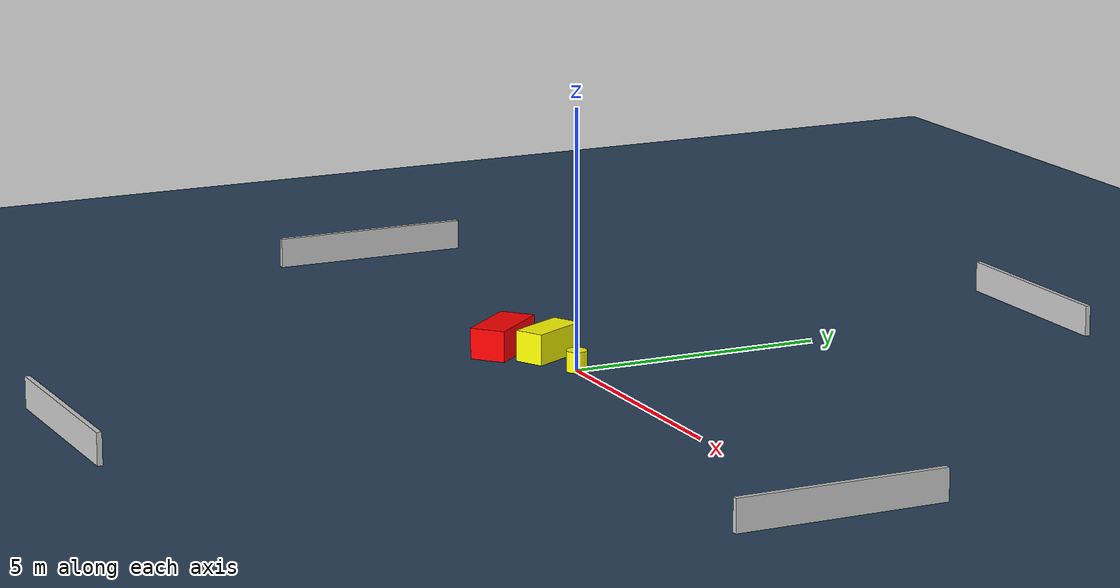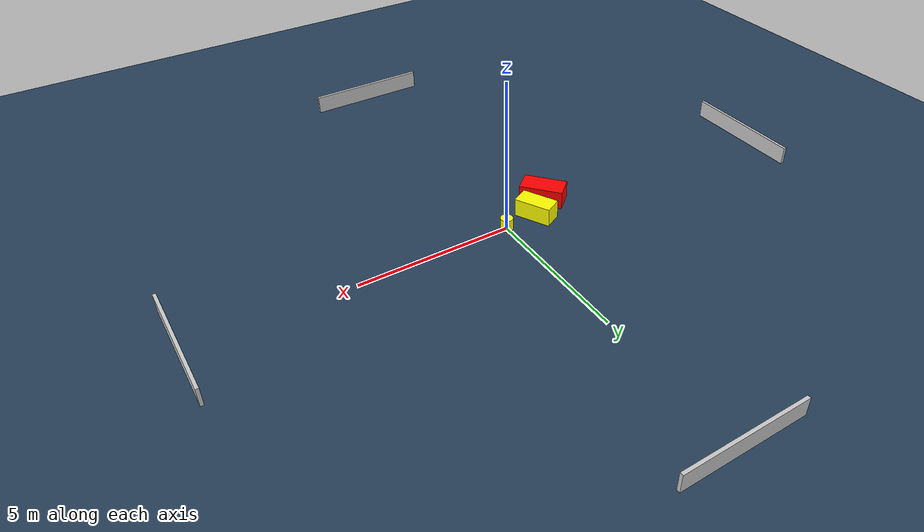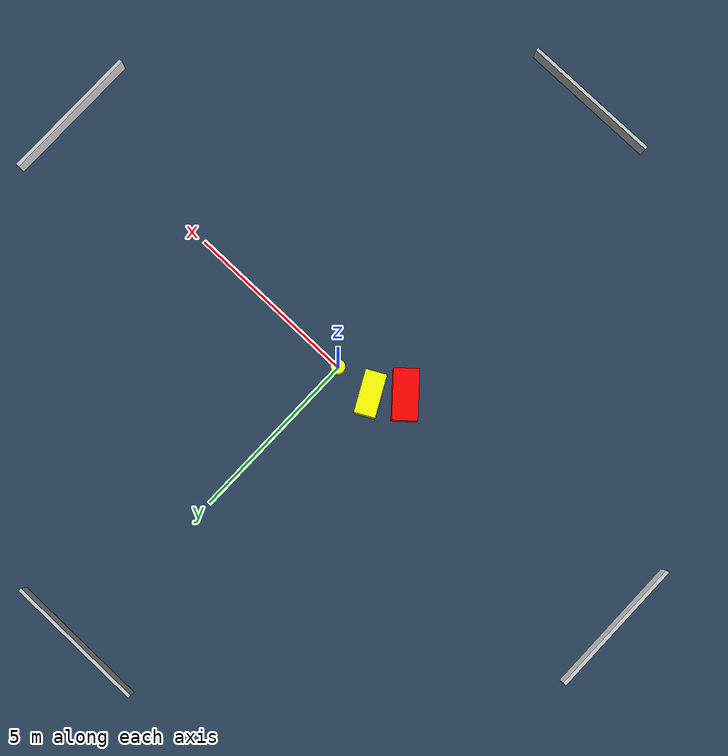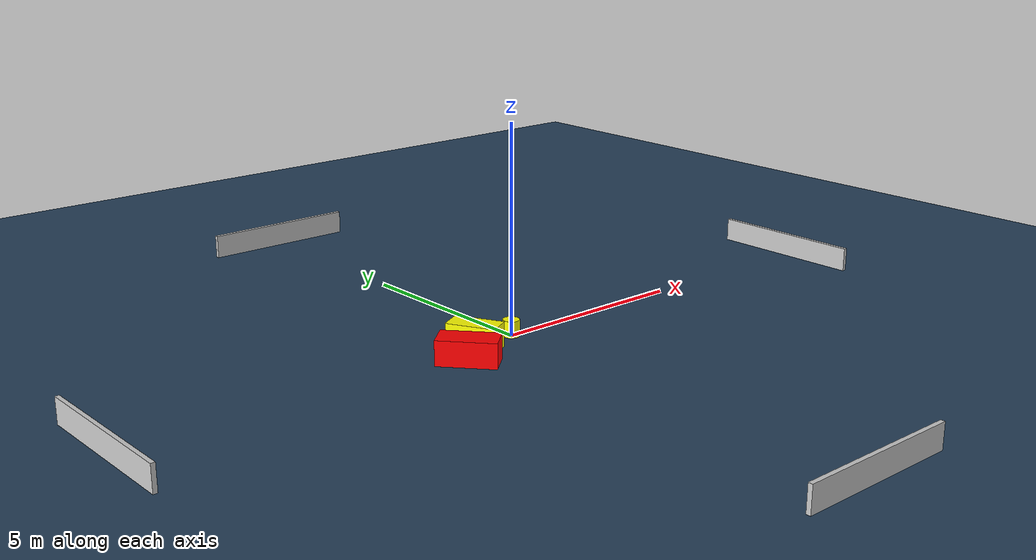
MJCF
<?xml version="1.0" ?>
<mujoco model="generated_environment">
  <option timestep="0.01" integrator="RK4" cone="elliptic"/>
  <default>
    <geom density="1"/>
  </default>
  <asset>
    <texture builtin="gradient" height="3072" name="skybox" rgb1="0.3 0.5 0.7" rgb2="0 0 0" type="skybox" width="512"/>
    <texture builtin="checker" height="300" name="groundplane" rgb1="0.2 0.3 0.4" rgb2="0.1 0.2 0.3" type="2d" width="300"/>
    <material name="groundplane" reflectance="0.2" texrepeat="5 5" texture="groundplane"/>
  </asset>
  <worldbody>
    <light dir="0 0 -1" directional="true" pos="0 0 1.5"/>
    <geom condim="3" friction="0.5 0.005 0.001" material="groundplane" name="floor" pos="0 0 0" size="0 0 0.05" type="plane"/>
    <body name="walls">
      <geom name="wall_1" condim="4" pos="-10.0 0.0 0.3" rgba="0.800000011920929 0.800000011920929 0.800000011920929 1.0" size="0.05 2.0 0.3" type="box"/>
      <geom name="wall_2" condim="4" pos="10.0 0.0 0.3" rgba="0.800000011920929 0.800000011920929 0.800000011920929 1.0" size="0.05 2.0 0.3" type="box"/>
      <geom name="wall_3" condim="4" pos="0.0 -10.0 0.3" rgba="0.800000011920929 0.800000011920929 0.800000011920929 1.0" size="2.0 0.05 0.3" type="box"/>
      <geom name="wall_4" condim="4" pos="0.0 10.0 0.3" rgba="0.800000011920929 0.800000011920929 0.800000011920929 1.0" size="2.0 0.05 0.3" type="box"/>
    </body>
    <body name="robot">
      <joint name="joint_x" type="slide" pos="0 0 0" axis="1 0 0"/>
      <joint name="joint_y" type="slide" pos="0 0 0" axis="0 1 0"/>
      <geom name="robot" type="cylinder" pos="0.0 0.0 0.2" size="0.2 0.2 0.0" mass="5.0" friction="1.0 0.005 0.0001" condim="4" rgba="1.0 1.0 0.0 1.0"/>
    </body>
    <body name="obstacle_1_movable">
      <geom name="obstacle_1_movable" condim="4" pos="-1.1328741821817097 -0.05620114567883677 0.3" euler="0 0 297.83651624336113" friction="0.0 0.005 0.001" rgba="1.0 1.0 0.0 1.0" size="0.6003979833597142 0.295905959811092 0.3" type="box" mass="0.1"/>
      <joint type="free"/>
    </body>
    <body name="obstacle_2_static">
      <geom name="obstacle_2_static" condim="4" pos="-1.827185293825248 -0.6800443830249461 0.3" euler="0 0 310.8804480960709" friction="0.0 0.005 0.001" rgba="1.0 0.0 0.0 1.0" size="0.6973304857108775 0.34998612983390753 0.3" type="box"/>
    </body>
  </worldbody>
  <actuator>
    <motor name="actuator_x" joint="joint_x" gear="1" ctrlrange="-1 1"/>
    <motor name="actuator_y" joint="joint_y" gear="1" ctrlrange="-1 1"/>
  </actuator>
</mujoco>
